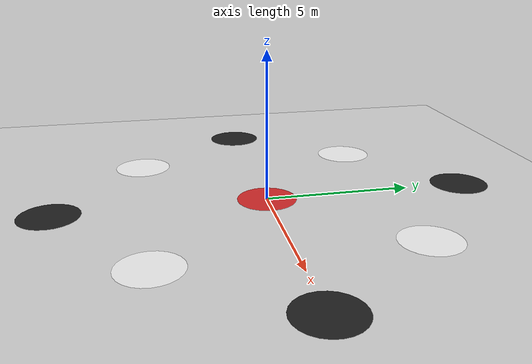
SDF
<sdf version="1.4">
 <world name="default">
  <include><uri>model://sun</uri></include>
  <plugin name="ros_link_attacher_plugin" filename="libgazebo_ros_link_attacher.so"/>
  <light name="user_directional_light_0" type="directional">
   <pose>0 0 1 0 -0 0</pose>
   <diffuse>0.5 0.5 0.5 1</diffuse>
   <specular>0.1 0.1 0.1 1</specular>
   <direction>0.1 0.1 -0.9</direction>
   <attenuation>
    <range>40</range>
    <constant>0.5</constant>
    <linear>0.01</linear>
    <quadratic>0.001</quadratic>
   </attenuation>
  </light>
  <light name="user_directional_light_1" type="directional">
   <pose>-4 -4 1 0 -0 0</pose>
   <diffuse>0.5 0.5 0.5 1</diffuse>
   <specular>0.1 0.1 0.1 1</specular>
   <direction>0.1 0.1 -0.9</direction>
   <attenuation>
    <range>40</range>
    <constant>0.5</constant>
    <linear>0.01</linear>
    <quadratic>0.001</quadratic>
   </attenuation>
  </light>
  <light name="user_directional_light_2" type="directional">
   <pose>4 4 1 0 -0 0</pose>
   <diffuse>0.5 0.5 0.5 1</diffuse>
   <specular>0.1 0.1 0.1 1</specular>
   <direction>0.1 0.1 -0.9</direction>
   <attenuation>
    <range>40</range>
    <constant>0.5</constant>
    <linear>0.01</linear>
    <quadratic>0.001</quadratic>
   </attenuation>
  </light>
  <light name="user_directional_light_3" type="directional">
   <pose>-4 4 1 0 -0 0</pose>
   <diffuse>0.5 0.5 0.5 1</diffuse>
   <specular>0.1 0.1 0.1 1</specular>
   <direction>0.1 0.1 -0.9</direction>
   <attenuation>
    <range>40</range>
    <constant>0.5</constant>
    <linear>0.01</linear>
    <quadratic>0.001</quadratic>
   </attenuation>
  </light>
  <light name="user_directional_light_4" type="directional">
   <pose>4 -4 1 0 -0 0</pose>
   <diffuse>0.5 0.5 0.5 1</diffuse>
   <specular>0.1 0.1 0.1 1</specular>
   <direction>0.1 0.1 -0.9</direction>
   <attenuation>
    <range>40</range>
    <constant>0.5</constant>
    <linear>0.01</linear>
    <quadratic>0.001</quadratic>
   </attenuation>
  </light>
  <include><uri>model://ground_plane</uri></include>
  <physics type="ode">
   <real_time_update_rate>1000.0</real_time_update_rate>
   <max_step_size>0.001</max_step_size>
   <real_time_factor>1</real_time_factor>
   <ode>
    <solver>
     <type>quick</type>
     <iters>150</iters>
     <precon_iters>0</precon_iters>
     <sor>1.400000</sor>
     <use_dynamic_moi_rescaling>1</use_dynamic_moi_rescaling>
    </solver>
    <constraints>
     <cfm>0.00001</cfm>
     <erp>0.2</erp>
     <contact_max_correcting_vel>2000.000000</contact_max_correcting_vel>
     <contact_surface_layer>0.01000</contact_surface_layer>
    </constraints>
   </ode>
  </physics>
  <model name="cylinder_start">
   <pose>0 0 0.01 0 0 0</pose>
   <static>true</static>
   <link name="link">
    <gravity>false</gravity>
    <inertial>
     <mass>1</mass>
     <inertia><ixx>0.145833</ixx><ixy>0</ixy><ixz>0</ixz><iyy>0.145833</iyy><iyz>0</iyz><izz>0.125</izz></inertia>
    </inertial>
    <visual name="visual">
     <geometry><cylinder><radius>1</radius><length>0.0001</length></cylinder></geometry>
     <material>
      <script><name>Gazebo/Red</name><uri>file://media/materials/scripts/gazebo.material</uri></script>
     </material>
    </visual>
   </link>
  </model>
  <model name="cylinder_pickup_1">
   <pose>4 4 0.01 0 0 0</pose>
   <static>true</static>
   <link name="link">
    <gravity>false</gravity>
    <inertial>
     <mass>1</mass>
     <inertia><ixx>0.145833</ixx><ixy>0</ixy><ixz>0</ixz><iyy>0.145833</iyy><iyz>0</iyz><izz>0.125</izz></inertia>
    </inertial>
    <visual name="visual">
     <geometry><cylinder><radius>1</radius><length>0.0001</length></cylinder></geometry>
     <material>
      <script><name>Gazebo/White</name><uri>file://media/materials/scripts/gazebo.material</uri></script>
     </material>
    </visual>
   </link>
  </model>
  <model name="cylinder_pickup_2">
   <pose>4 -4 0.01 0 0 0</pose>
   <static>true</static>
   <link name="link">
    <gravity>false</gravity>
    <inertial>
     <mass>1</mass>
     <inertia><ixx>0.145833</ixx><ixy>0</ixy><ixz>0</ixz><iyy>0.145833</iyy><iyz>0</iyz><izz>0.125</izz></inertia>
    </inertial>
    <visual name="visual">
     <geometry><cylinder><radius>1</radius><length>0.0001</length></cylinder></geometry>
     <material>
      <script><name>Gazebo/White</name><uri>file://media/materials/scripts/gazebo.material</uri></script>
     </material>
    </visual>
   </link>
  </model>
  <model name="cylinder_pickup_3">
   <pose>-4 4 0.01 0 0 0</pose>
   <static>true</static>
   <link name="link">
    <gravity>false</gravity>
    <inertial>
     <mass>1</mass>
     <inertia><ixx>0.145833</ixx><ixy>0</ixy><ixz>0</ixz><iyy>0.145833</iyy><iyz>0</iyz><izz>0.125</izz></inertia>
    </inertial>
    <visual name="visual">
     <geometry><cylinder><radius>1</radius><length>0.0001</length></cylinder></geometry>
     <material>
      <script><name>Gazebo/White</name><uri>file://media/materials/scripts/gazebo.material</uri></script>
     </material>
    </visual>
   </link>
  </model>
  <model name="cylinder_pickup_4">
   <pose>-4 -4 0.01 0 0 0</pose>
   <static>true</static>
   <link name="link">
    <gravity>false</gravity>
    <inertial>
     <mass>1</mass>
     <inertia><ixx>0.145833</ixx><ixy>0</ixy><ixz>0</ixz><iyy>0.145833</iyy><iyz>0</iyz><izz>0.125</izz></inertia>
    </inertial>
    <visual name="visual">
     <geometry><cylinder><radius>1</radius><length>0.0001</length></cylinder></geometry>
     <material>
      <script><name>Gazebo/White</name><uri>file://media/materials/scripts/gazebo.material</uri></script>
     </material>
    </visual>
   </link>
  </model>
  <model name="cylinder_drop_1">
   <pose>0 7 0.01 0 0 0</pose>
   <static>true</static>
   <link name="link">
    <gravity>false</gravity>
    <inertial>
     <mass>1</mass>
     <inertia><ixx>0.145833</ixx><ixy>0</ixy><ixz>0</ixz><iyy>0.145833</iyy><iyz>0</iyz><izz>0.125</izz></inertia>
    </inertial>
    <visual name="visual">
     <geometry><cylinder><radius>1</radius><length>0.0001</length></cylinder></geometry>
     <material>
      <script><name>Gazebo/Black</name><uri>file://media/materials/scripts/gazebo.material</uri></script>
     </material>
    </visual>
   </link>
  </model>
  <model name="cylinder_drop_2">
   <pose>0 -7 0.01 0 0 0</pose>
   <static>true</static>
   <link name="link">
    <gravity>false</gravity>
    <inertial>
     <mass>1</mass>
     <inertia><ixx>0.145833</ixx><ixy>0</ixy><ixz>0</ixz><iyy>0.145833</iyy><iyz>0</iyz><izz>0.125</izz></inertia>
    </inertial>
    <visual name="visual">
     <geometry><cylinder><radius>1</radius><length>0.0001</length></cylinder></geometry>
     <material>
      <script><name>Gazebo/Black</name><uri>file://media/materials/scripts/gazebo.material</uri></script>
     </material>
    </visual>
   </link>
  </model>
  <model name="cylinder_drop_3">
   <pose>7 0 0.01 0 0 0</pose>
   <static>true</static>
   <link name="link">
    <gravity>false</gravity>
    <inertial>
     <mass>1</mass>
     <inertia><ixx>0.145833</ixx><ixy>0</ixy><ixz>0</ixz><iyy>0.145833</iyy><iyz>0</iyz><izz>0.125</izz></inertia>
    </inertial>
    <visual name="visual">
     <geometry><cylinder><radius>1</radius><length>0.0001</length></cylinder></geometry>
     <material>
      <script><name>Gazebo/Black</name><uri>file://media/materials/scripts/gazebo.material</uri></script>
     </material>
    </visual>
   </link>
  </model>
  <model name="cylinder_drop_4">
   <pose>-7 0 0.01 0 0 0</pose>
   <static>true</static>
   <link name="link">
    <gravity>false</gravity>
    <inertial>
     <mass>1</mass>
     <inertia><ixx>0.145833</ixx><ixy>0</ixy><ixz>0</ixz><iyy>0.145833</iyy><iyz>0</iyz><izz>0.125</izz></inertia>
    </inertial>
    <visual name="visual">
     <geometry><cylinder><radius>1</radius><length>0.0001</length></cylinder></geometry>
     <material>
      <script><name>Gazebo/Black</name><uri>file://media/materials/scripts/gazebo.material</uri></script>
     </material>
    </visual>
   </link>
  </model>
  <scene><ambient>0.4 0.4 0.4 1</ambient><background>0.7 0.7 0.7 1</background><shadows>true</shadows></scene>
 </world>
</sdf>
